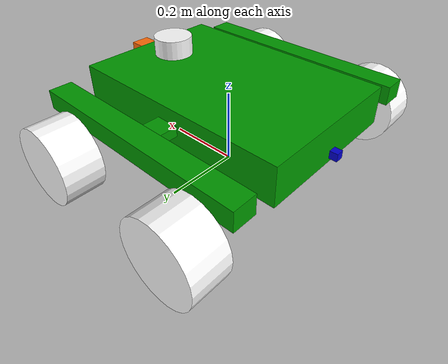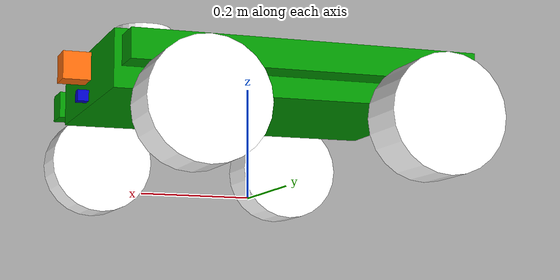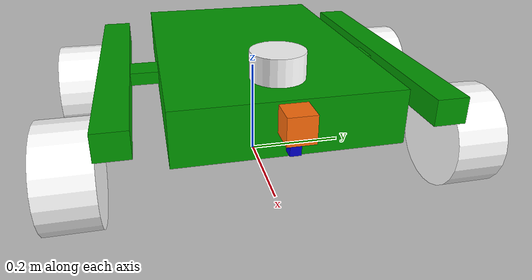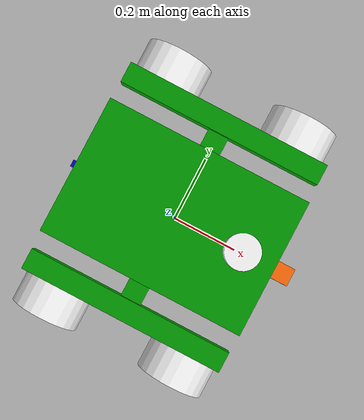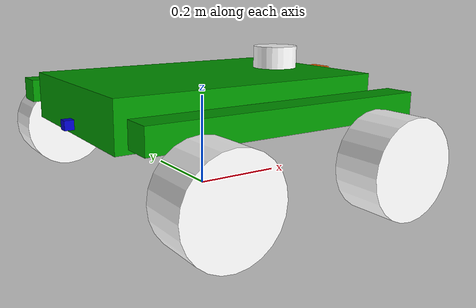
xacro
<?xml version="1.0"?>
<robot name="robot" xmlns:xacro="http://www.ros.org/wiki/xacro">

   <material name="grey">
      <color rgba="0.7 0.7 0.7 1"/>
   </material>

   <material name="green">
      <color rgba="0 0.6 0 1"/>
   </material>

   <material name="white">
      <color rgba="1 1 1 1"/>
   </material>

   <material name="black">
      <color rgba="0.0 0.0 0.0 1.0"/>
    </material>

    <material name="blue">
      <color rgba="0.0 0.0 0.8 1.0"/>
    </material>

    <material name="orange">
      <color rgba="${255/255} ${108/255} ${10/255} 1.0"/>
    </material>

    <material name="brown">
      <color rgba="${222/255} ${207/255} ${195/255} 1.0"/>
    </material>

    <material name="red">
      <color rgba="0.8 0.0 0.0 1.0"/>
    </material>

   <!-- Chassis -->
   <link name="base_footprint"></link>
   <link name="base_link">
      <inertial>
         <mass value="2.0"/>
         <origin xyz="0 0 0" rpy="0 0 0"/>
         <inertia ixx="0.1" ixy="0.0" ixz="0.0" iyy="0.1" iyz="0.0" izz="0.1"/>
      </inertial>
      <visual>
         <geometry>
            <box size="0.6 0.4 0.1" />
         </geometry>
         <origin xyz="0 0 0" rpy="0 0 0"/>
         <material name="green"/>
      </visual>
      <collision>
         <geometry>
            <box size="0.6 0.4 0.1" />
         </geometry>
         <origin xyz="0 0 0" rpy="0 0 0"/>
      </collision>
   </link>

   <link name="gps">
      <inertial>
         <mass value="5.0"/>
         <origin xyz="0 0 0" rpy="0 0 0"/>
         <inertia ixx="0.1" ixy="0.0" ixz="0.0" iyy="0.1" iyz="0.0" izz="0.1"/>
      </inertial>
      <visual>
         <geometry>
            <box size="0.02 0.02 0.02" />
         </geometry>
         <origin xyz="0 0 0" rpy="0 0 0"/>
         <material name="black"/>
      </visual>
      <collision>
         <geometry>
            <box size="0.02 0.02 0.02" />
         </geometry>
         <origin xyz="0 0 0" rpy="0 0 0"/>
      </collision>
   </link>

   <link name="camera">
      <inertial>
         <mass value="5.0"/>
         <origin xyz="0 0 0" rpy="0 0 0"/>
         <inertia ixx="0.1" ixy="0.0" ixz="0.0" iyy="0.1" iyz="0.0" izz="0.1"/>
      </inertial>
      <visual>
         <geometry>
            <box size="0.05 0.05 0.05" />
         </geometry>
         <origin xyz="0 0 0" rpy="0 0 0"/>
         <material name="orange"/>
      </visual>
      <collision>
         <geometry>
            <box size="0.05 0.05 0.05" />
         </geometry>
         <origin xyz="0 0 0" rpy="0 0 0"/>
      </collision>
   </link>

   <link name="ultrasonic">
      <inertial>
         <mass value="5.0"/>
         <origin xyz="0 0 0" rpy="0 0 0"/>
         <inertia ixx="0.1" ixy="0.0" ixz="0.0" iyy="0.1" iyz="0.0" izz="0.1"/>
      </inertial>
      <visual>
         <geometry>
            <box size="0.02 0.02 0.02" />
         </geometry>
         <origin xyz="0 0 0" rpy="0 0 0"/>
         <material name="blue"/>
      </visual>
      <collision>
         <geometry>
            <box size="0.02 0.02 0.02" />
         </geometry>
         <origin xyz="0 0 0" rpy="0 0 0"/>
      </collision>
   </link>

   <link name="ultrasonic2">
      <inertial>
         <mass value="5.0"/>
         <origin xyz="0 0 0" rpy="0 0 0"/>
         <inertia ixx="0.1" ixy="0.0" ixz="0.0" iyy="0.1" iyz="0.0" izz="0.1"/>
      </inertial>
      <visual>
         <geometry>
            <box size="0.02 0.02 0.02" />
         </geometry>
         <origin xyz="0 0 0" rpy="0 0 0"/>
         <material name="blue"/>
      </visual>
      <collision>
         <geometry>
            <box size="0.02 0.02 0.02" />
         </geometry>
         <origin xyz="0 0 0" rpy="0 0 0"/>
      </collision>
   </link>

   <!-- Lidar -->

   <link name="lidar">
      <inertial>
         <mass value="0.2"/>
         <origin xyz="0 0 0" rpy="0 0 0"/>
         <inertia ixx="0.01" ixy="0.0" ixz="0.0" iyy="0.01" iyz="0.0" izz="0.01"/>
      </inertial>
      <visual>
         <geometry>
            <cylinder radius="0.05" length="0.05" />
         </geometry>
         <origin xyz="0 0 0" rpy="0 0 0"/>
         <material name="white"/>
      </visual>
      <collision>
         <geometry>
            <box size="0.1 0.1 0.05"/>
         </geometry>
         <origin xyz="0 0 0" rpy="0 0 0"/>
      </collision>
   </link>

   <xacro:macro name="third_link" params="prefix">
      <link name="${prefix}_third_link">
         <inertial>
         <mass value="1.0"/>
         <origin xyz="0 0 0" rpy="0 0 0"/>
         <inertia ixx="0.01" ixy="0.0" ixz="0.0" iyy="0.01" iyz="0.0" izz="0.004"/>
      </inertial>
      <visual>
         <geometry>
            <box size="0.6 0.06 0.05"/>
         </geometry>
         <origin xyz="0 0 0" rpy="0 0 0"/>
         <material name="green"/>
      </visual>
      <collision>
         <geometry>
            <box size="0.6 0.06 0.05" />
         </geometry>
         <origin xyz="0 0 0" rpy="0 0 0"/>
      </collision>
      </link>
   </xacro:macro>

   <xacro:third_link prefix="right" />
   <xacro:third_link prefix="left" />

   <xacro:macro name="sec_link" params="prefix">
      <link name="${prefix}_sec_link">
         <inertial>
         <mass value="0.5"/>
         <origin xyz="0 0 0" rpy="0 0 0"/>
         <inertia ixx="0.005" ixy="0.0" ixz="0.0" iyy="0.005" iyz="0.0" izz="0.002"/>
      </inertial>
      <visual>
         <geometry>
            <box size="0.06 0.06 0.025" />
         </geometry>
         <origin xyz="0 0 0" rpy="0 0 0"/>
         <material name="green"/>
      </visual>
      <collision>
         <geometry>
            <box size="0.06 0.06 0.025" />
         </geometry>
         <origin xyz="0 0 0" rpy="0 0 0"/>
      </collision>
      </link>
   </xacro:macro>

   <xacro:sec_link prefix="left" />
   <xacro:sec_link prefix="right" />

   <!-- Wheels -->

   <xacro:macro name="wheel_link" params="prefix">
      <link name="${prefix}_wheel">
         <inertial>
            <mass value="0.5"/>
            <origin xyz="0 0 0" rpy="0 0 0"/>
            <inertia ixx="0.02" ixy="0.0" ixz="0.0" iyy="0.02" iyz="0.0" izz="0.02"/>
         </inertial>
         <visual>
            <geometry>
               <cylinder radius="0.1" length="0.1" />
            </geometry>
            <origin xyz="0 0 0" rpy="1.57 0 0"/>
            <material name="white"/>
         </visual>
         <collision>
           <geometry>
              <cylinder radius="0.1" length="0.1" />
           </geometry>
           <origin xyz="0 0 0" rpy="1.57 0 0"/>
         </collision>
      </link>
   </xacro:macro>

   <xacro:wheel_link prefix="left" />
   <xacro:wheel_link prefix="right" />
   <xacro:wheel_link prefix="left2" />
   <xacro:wheel_link prefix="right2" />

   <!-- Joints -->

   <joint name="base_left_sec_link_joint" type="fixed">
      <parent link="base_link"/>
      <child link="left_sec_link"/>
      <origin xyz=" 0 0.225 0" rpy="0 0 0"/>
      <axis xyz="0 0 0"/>
   </joint>

   <joint name="base_right_sec_link_joint" type="fixed">
      <parent link="base_link"/>
      <child link="right_sec_link"/>
      <origin xyz=" 0 -0.225 0" rpy="0 0 0"/>
      <axis xyz="0 0 0"/>
   </joint>

   <joint name="right_sec_third_link_joint" type="fixed">
      <parent link="right_sec_link"/>
      <child link="right_third_link"/>
      <origin xyz=" 0 -0.06 0" rpy="0 0 0"/>
      <axis xyz="0 0 0"/>
   </joint>

   <joint name="left_sec_third_link_joint" type="fixed">
      <parent link="left_sec_link"/>
      <child link="left_third_link"/>
      <origin xyz=" 0 0.06 0" rpy="0 0 0"/>
      <axis xyz="0 0 0"/>
   </joint>

   <joint name="base_left_wheel_joint" type="continuous">
      <parent link="left_third_link"/>
      <child link="left_wheel"/>
      <origin xyz="-0.2 0.08 -0.1" rpy="0 0 0"/>
      <axis xyz="0 1 0"/>
   </joint>

   <joint name="base_left_wheel2_joint" type="continuous">
      <parent link="left_third_link"/>
      <child link="left2_wheel"/>
      <origin xyz="0.2 0.08 -0.1" rpy="0 0 0"/>
      <axis xyz="0 1 0"/>
   </joint>

   <joint name="base_right_wheel_joint" type="continuous">
      <parent link="right_third_link"/>
      <child link="right_wheel"/>
      <origin xyz="-0.2 -0.08 -0.1" rpy="0 0 0"/>
      <axis xyz="0 1 0"/>
   </joint>

   <joint name="base_right_wheel2_joint" type="continuous">
      <parent link="right_third_link"/>
      <child link="right2_wheel"/>
      <origin xyz="0.2 -0.08 -0.1" rpy="0 0 0"/>
      <axis xyz="0 1 0"/>
   </joint>

   <joint name="base_lidar_joint" type="fixed">
      <parent link="base_link"/>
      <child link="lidar"/>
      <origin xyz="0.2 0 0.075" rpy="0 0 0"/>
   </joint>

   <joint name="base_camera_joint" type="fixed">
      <parent link="base_link"/>
      <child link="camera"/>
      <origin xyz="0.325 0 0.02" rpy="0 0 0"/>
   </joint>

   <joint name="base_ultrasonic_joint" type="fixed">
      <parent link="base_link"/>
      <child link="ultrasonic"/>
      <origin xyz="0.31 0 -0.03" rpy="0 0 0"/>
   </joint>

   <joint name="base_ultrasonic2_joint" type="fixed">
      <parent link="base_link"/>
      <child link="ultrasonic2"/>
      <origin xyz="-0.31 0 -0.03" rpy="0 0 0"/>
   </joint>

   <joint name="base_gps_joint" type="fixed">
      <parent link="base_link"/>
      <child link="gps"/>
      <origin xyz="0 0 -0.06" rpy="0 0 0"/>
   </joint>

   <joint name="base_joint" type="fixed">
      <parent link="base_footprint"/>
      <child link="base_link"/>
      <origin xyz="0 0 0.2" rpy="0 0 0"/>
   </joint>

</robot>
